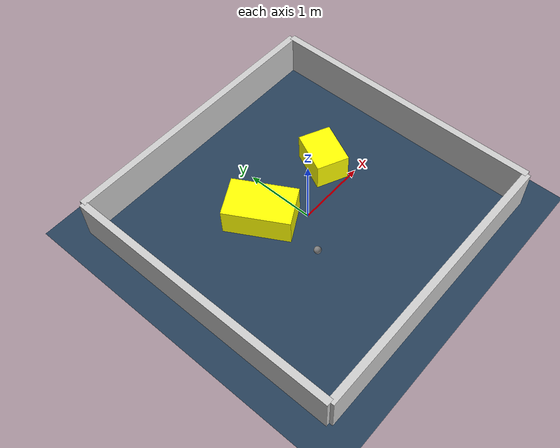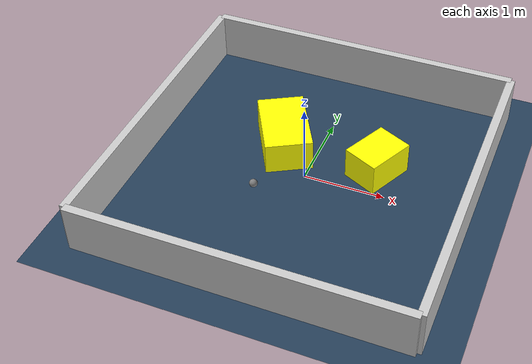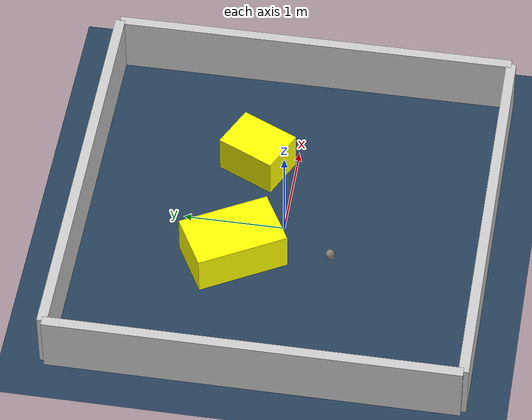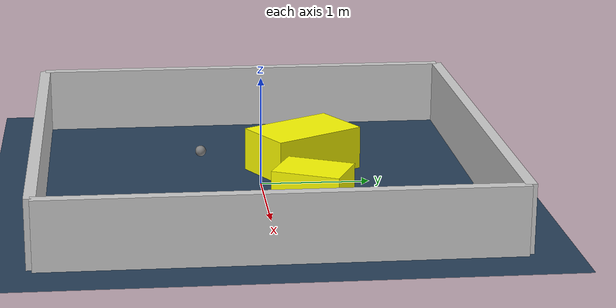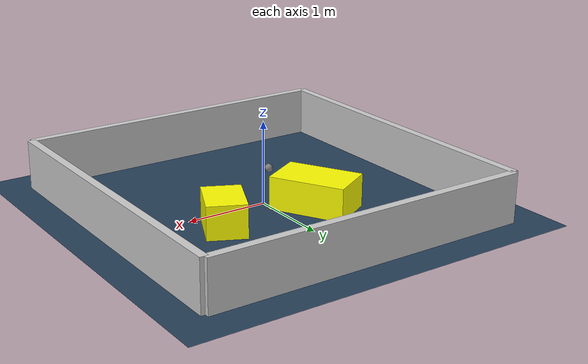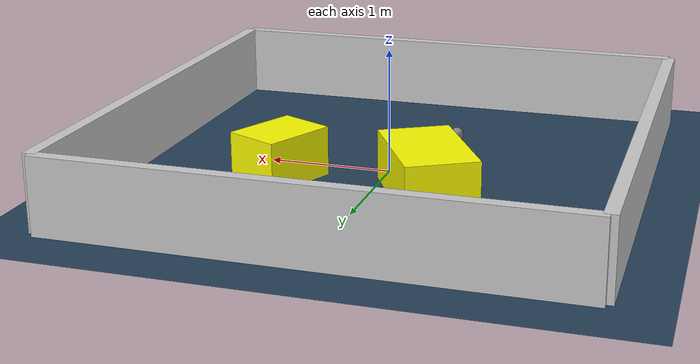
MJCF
<?xml version="1.0" ?>
<mujoco model="generated_environment">
  <option timestep="0.01" integrator="RK4" cone="elliptic"/>
  <default>
    <geom density="1"/>
  </default>
  <asset>
    <texture builtin="gradient" height="3072" rgb1="0.3 0.5 0.7" rgb2="0 0 0" type="skybox" width="512"/>
    <texture builtin="checker" height="300" mark="edge" markrgb="0.8 0.8 0.8" name="groundplane" rgb1="0.2 0.3 0.4" rgb2="0.1 0.2 0.3" type="2d" width="300"/>
    <material name="groundplane" reflectance="0.2" texrepeat="5 5" texture="groundplane" texuniform="true"/>
    <material name="robot" rgba="0.0 1.0 0.0 1"/>
  </asset>
  <worldbody>
    <light dir="0 0 -1" directional="true" pos="0 0 1.5"/>
    <geom condim="4" friction="1.0 0.005 0.001" material="groundplane" name="floor" size="0 0 0.05" type="plane"/>
    <body name="walls">
      <geom name="wall_1" condim="4" pos="-2.0 0.0 0.3" rgba="0.800000011920929 0.800000011920929 0.800000011920929 1.0" size="0.05 2.0 0.3" type="box"/>
      <geom name="wall_2" condim="4" pos="2.0 0.0 0.3" rgba="0.800000011920929 0.800000011920929 0.800000011920929 1.0" size="0.05 2.0 0.3" type="box"/>
      <geom name="wall_3" condim="4" pos="0.0 -2.0 0.3" rgba="0.800000011920929 0.800000011920929 0.800000011920929 1.0" size="2.0 0.05 0.3" type="box"/>
      <geom name="wall_4" condim="4" pos="0.0 2.0 0.3" rgba="0.800000011920929 0.800000011920929 0.800000011920929 1.0" size="2.0 0.05 0.3" type="box"/>
    </body>
    <body name="robot">
      <joint name="joint_x" type="slide" pos="0 0 0" axis="1 0 0"/>
      <joint name="joint_y" type="slide" pos="0 0 0" axis="0 1 0"/>
      <geom name="robot" type="sphere" pos="-0.4322434354582232 -0.5238583490746518 0.2" size="0.05" mass="5." friction="1.0 0.005 0.0001" condim="4"/>
      <site name="sensor_ball"/>
    </body>
    <body name="obstacle_1_movable">
      <geom name="obstacle_1_movable" condim="4" pos="0.7813569573443546 0.38743538465915783 0.2" euler="0 0 154.80241136042002" friction="1.0 0.005 0.001" rgba="1 1 0 1" size="0.23097224798928495 0.3053867551629087 0.2" type="box" mass="0.1"/>
      <joint type="free"/>
    </body>
    <body name="obstacle_2_movable">
      <geom name="obstacle_2_movable" condim="4" pos="-0.43500013432087004 0.4364531510899847 0.2" euler="0 0 119.35253776755017" friction="1.0 0.005 0.001" rgba="1 1 0 1" size="0.45849955109992757 0.28827152849031445 0.2" type="box" mass="0.1"/>
      <joint type="free"/>
    </body>
  </worldbody>
  <actuator>
    <motor name="actuator_x" joint="joint_x" gear="1" ctrlrange="-1 1"/>
    <motor name="actuator_y" joint="joint_y" gear="1" ctrlrange="-1 1"/>
  </actuator>
</mujoco>
